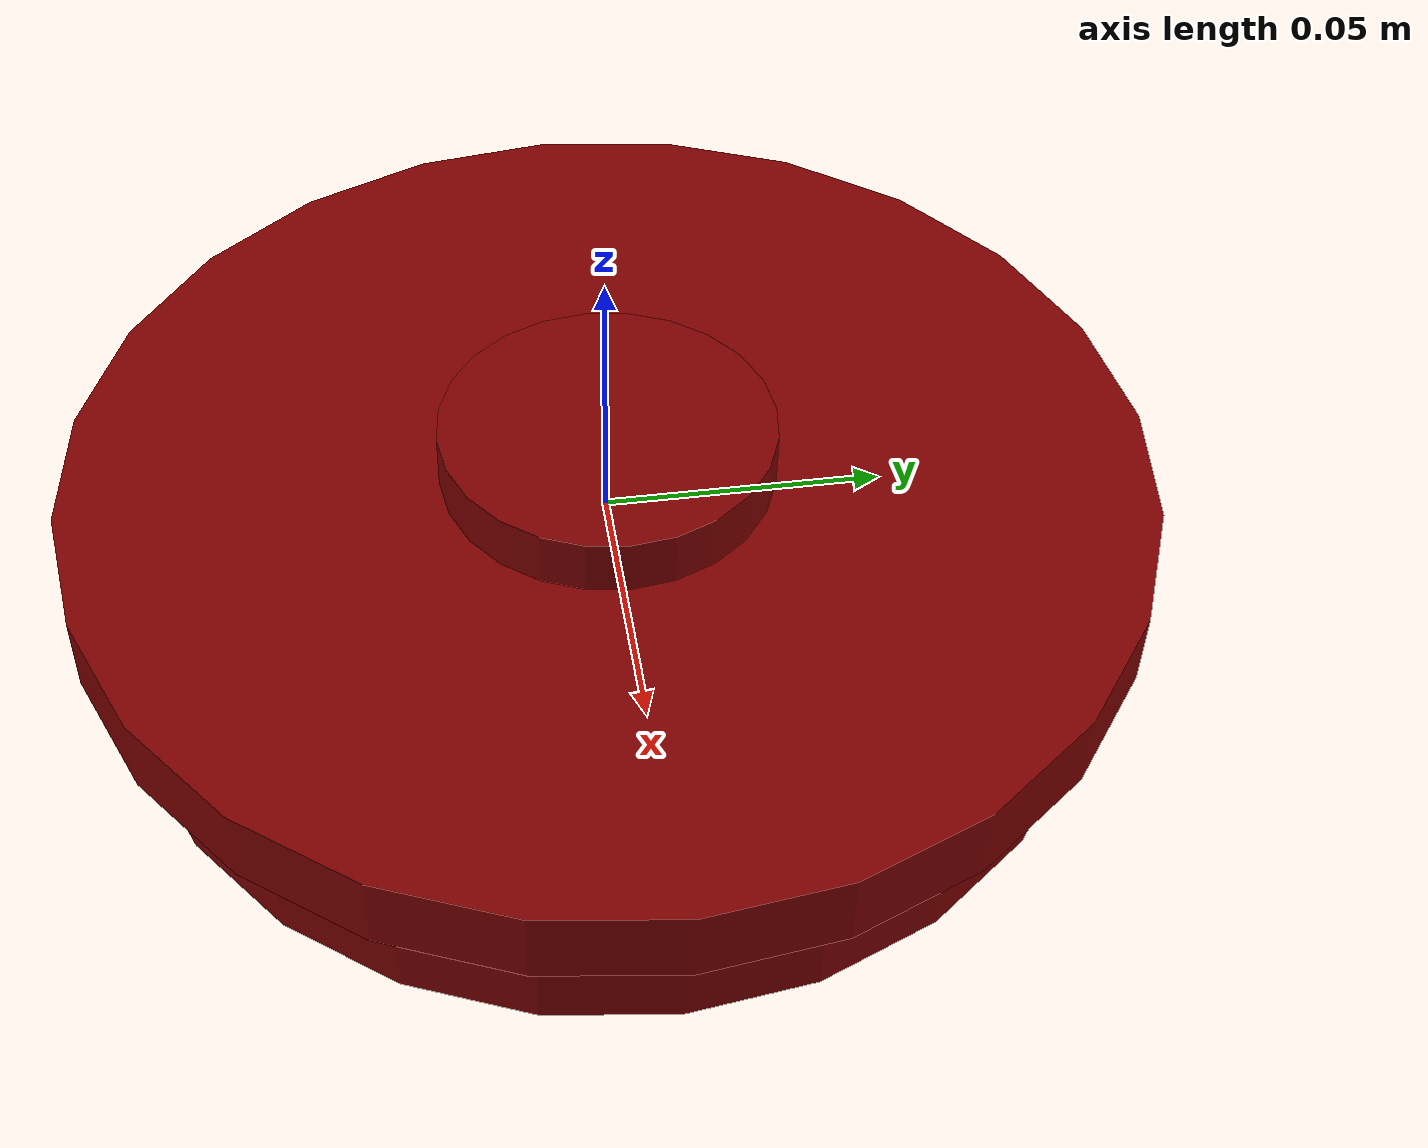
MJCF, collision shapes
<mujoco model="model">
  <option timestep="0.002" gravity="0.0 0.0 -9.81"/>
  <compiler angle="radian"/>
  <asset>
    <texture file="visuals/T_BC001.png" name="lid_material" type="2d"/>
    <material name="lid_material" rgba="1 1 1 1.0" texture="lid_material" shininess="-1.0" specular="0.3103448502657381"/>
    <mesh file="visuals/lid.obj" name="lid_vis"/>
  </asset>
  <default>
    <default class="visual">
      <geom conaffinity="0" contype="0" group="1" type="mesh"/>
    </default>
    <default class="collision">
      <geom group="0" rgba="0.5 0 0 0.5"/>
    </default>
    <default class="spawn">
      <geom group="0" rgba="1 1 1 0.5" contype="0" conaffinity="0"/>
      <site group="0" rgba="1 1 1 0.5"/>
    </default>
    <default class="region">
      <geom group="1" conaffinity="0" contype="0" rgba="0 1 0 0"/>
    </default>
  </default>
  <worldbody>
    <body>
      <body name="object">
        <geom mesh="lid_vis" type="mesh" solimp="0.998 0.998 0.001" solref="0.001 1" friction="0.95 0.3 0.1" class="visual" material="lid_material"/>
        <geom class="collision"  name="handle_main" type="cylinder" pos="0.001975574941177248 0.00010283934387791613 0.01486716144798192" size="0.029718130826950073 0.006432304158806801" quat="1.0 0.0 0.0 0.0" density="1000.0"/>
        <geom class="collision" type="cylinder" pos="0.001975574941177248 0.00010283934387791613 0.0036506114479819274" size="0.09667138755321503 0.007239523343741894" quat="1.0 0.0 0.0 0.0" density="1000.0"/>
        <geom class="collision" type="cylinder" pos="0.001975574941177248 0.00010283934387791613 -0.0149506114479819274" size="0.0890000755321503 0.011239523343741894" quat="1.0 0.0 0.0 0.0" density="1000.0"/>
        <geom class="region" name="reg_main" density="0" type="box" pos="-0.0061988600000000005 7.800000000057761e-07 -0.0026955700000000013" size="0.1039625 0.0959705 0.024149"/>
      </body>
    </body>
  </worldbody>
</mujoco>
